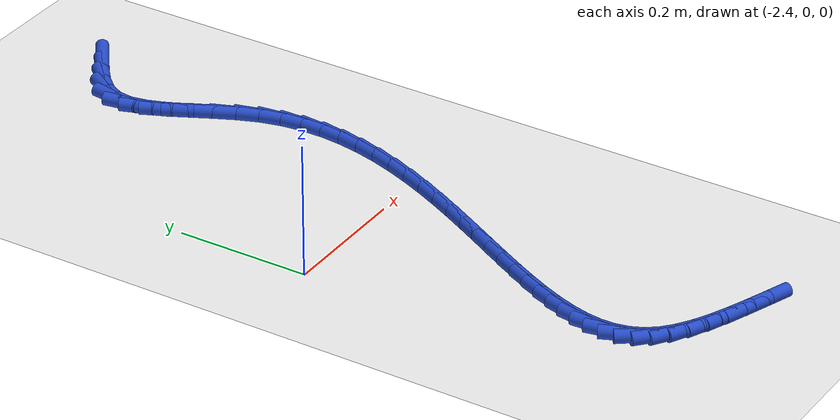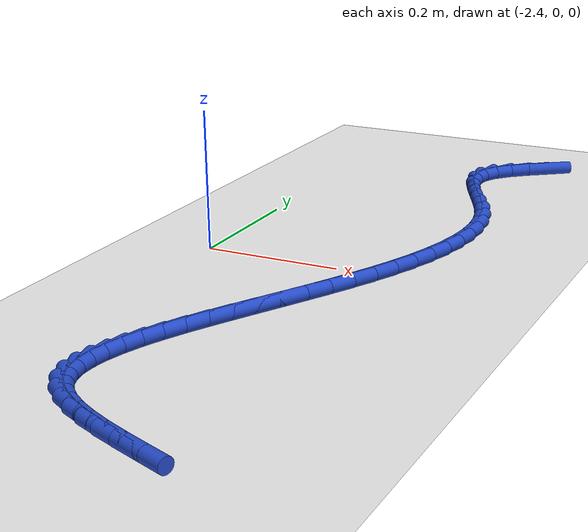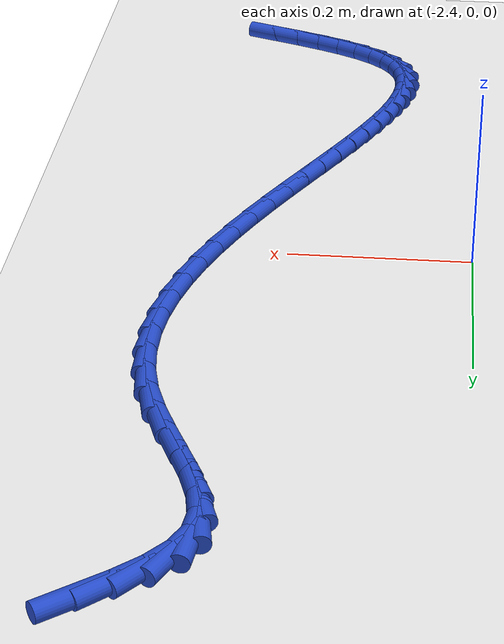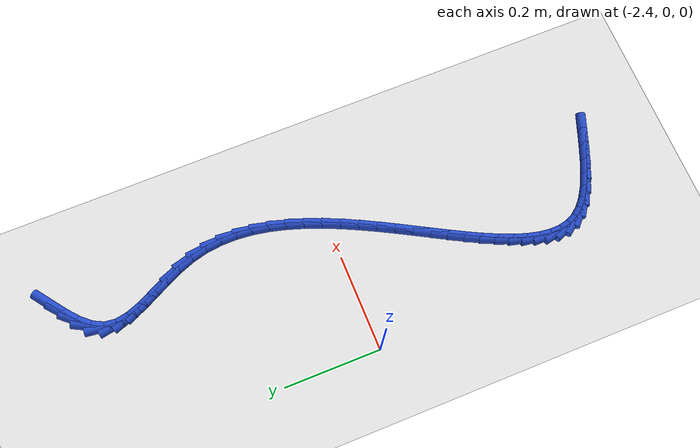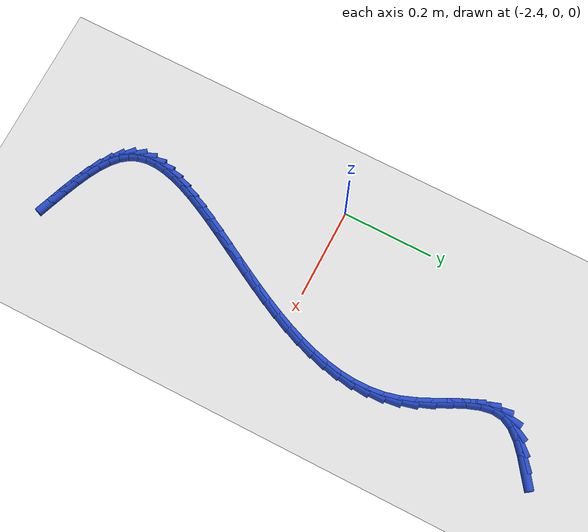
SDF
<sdf version="1.6">
 <world name="default">
  <model name="ground_plane">
   <static>1</static>
   <link name="link">
    <collision name="collision">
     <geometry><plane><normal>0 0 1</normal><size>100 100</size></plane></geometry>
     <surface><friction><ode><mu>100</mu><mu2>50</mu2></ode></friction></surface>
    </collision>
    <visual name="visual">
     <cast_shadows>0</cast_shadows>
     <geometry><plane><normal>0 0 1</normal><size>100 100</size></plane></geometry>
     <material>
      <script><uri>file://media/materials/scripts/gazebo.material</uri><name>Gazebo/WhiteGlow</name></script>
     </material>
    </visual>
   </link>
  </model>
  <model name="line">
   <link name="link_109">
    <pose>-2.0768717372128793 0.5652025458535648 0.01 0 1.57 0.6288564141586543</pose>
    <collision name="collision">
     <geometry><cylinder><radius>0.01</radius><length>0.08</length></cylinder></geometry>
    </collision>
    <visual name="visual">
     <material>
      <script><name>Gazebo/Blue</name><uri>file://media/materials/scripts/gazebo.material</uri></script>
     </material>
     <geometry><cylinder><radius>0.01</radius><length>0.08</length></cylinder></geometry>
    </visual>
   </link>
   <link name="link_110">
    <pose>-2.104337845397083 0.5452246693538564 0.01 0 1.57 0.7010850523284937</pose>
    <collision name="collision">
     <geometry><cylinder><radius>0.01</radius><length>0.08</length></cylinder></geometry>
    </collision>
    <visual name="visual">
     <material>
      <script><name>Gazebo/Blue</name><uri>file://media/materials/scripts/gazebo.material</uri></script>
     </material>
     <geometry><cylinder><radius>0.01</radius><length>0.08</length></cylinder></geometry>
    </visual>
   </link>
   <link name="link_111">
    <pose>-2.1286498554984687 0.5247018095238047 0.01 0 1.57 0.8453170291688488</pose>
    <collision name="collision">
     <geometry><cylinder><radius>0.01</radius><length>0.08</length></cylinder></geometry>
    </collision>
    <visual name="visual">
     <material>
      <script><name>Gazebo/Blue</name><uri>file://media/materials/scripts/gazebo.material</uri></script>
     </material>
     <geometry><cylinder><radius>0.01</radius><length>0.08</length></cylinder></geometry>
    </visual>
   </link>
   <link name="link_112">
    <pose>-2.147730063027277 0.5031862334443127 0.01 0 1.57 1.0970008732261427</pose>
    <collision name="collision">
     <geometry><cylinder><radius>0.01</radius><length>0.08</length></cylinder></geometry>
    </collision>
    <visual name="visual">
     <material>
      <script><name>Gazebo/Blue</name><uri>file://media/materials/scripts/gazebo.material</uri></script>
     </material>
     <geometry><cylinder><radius>0.01</radius><length>0.08</length></cylinder></geometry>
    </visual>
   </link>
   <link name="link_113">
    <pose>-2.159500763493746 0.48023020819628376 0.01 0 1.57 1.4522091517197169</pose>
    <collision name="collision">
     <geometry><cylinder><radius>0.01</radius><length>0.08</length></cylinder></geometry>
    </collision>
    <visual name="visual">
     <material>
      <script><name>Gazebo/Blue</name><uri>file://media/materials/scripts/gazebo.material</uri></script>
     </material>
     <geometry><cylinder><radius>0.01</radius><length>0.08</length></cylinder></geometry>
    </visual>
   </link>
   <link name="link_114">
    <pose>-2.162450237870991 0.45547512550309555 0.01 0 1.57 -1.3967242053440274</pose>
    <collision name="collision">
     <geometry><cylinder><radius>0.01</radius><length>0.08</length></cylinder></geometry>
    </collision>
    <visual name="visual">
     <material>
      <script><name>Gazebo/Blue</name><uri>file://media/materials/scripts/gazebo.material</uri></script>
     </material>
     <geometry><cylinder><radius>0.01</radius><length>0.08</length></cylinder></geometry>
    </visual>
   </link>
   <link name="link_115">
    <pose>-2.1577930745747396 0.4289916834785453 0.01 0 1.57 -1.2206644007151475</pose>
    <collision name="collision">
     <geometry><cylinder><radius>0.01</radius><length>0.08</length></cylinder></geometry>
    </collision>
    <visual name="visual">
     <material>
      <script><name>Gazebo/Blue</name><uri>file://media/materials/scripts/gazebo.material</uri></script>
     </material>
     <geometry><cylinder><radius>0.01</radius><length>0.08</length></cylinder></geometry>
    </visual>
   </link>
   <link name="link_116">
    <pose>-2.147563706843301 0.40097967962411835 0.01 0 1.57 -1.1320824989184435</pose>
    <collision name="collision">
     <geometry><cylinder><radius>0.01</radius><length>0.08</length></cylinder></geometry>
    </collision>
    <visual name="visual">
     <material>
      <script><name>Gazebo/Blue</name><uri>file://media/materials/scripts/gazebo.material</uri></script>
     </material>
     <geometry><cylinder><radius>0.01</radius><length>0.08</length></cylinder></geometry>
    </visual>
   </link>
   <link name="link_117">
    <pose>-2.1337967297673655 0.37163893692788197 0.01 0 1.57 -1.1062259422041585</pose>
    <collision name="collision">
     <geometry><cylinder><radius>0.01</radius><length>0.08</length></cylinder></geometry>
    </collision>
    <visual name="visual">
     <material>
      <script><name>Gazebo/Blue</name><uri>file://media/materials/scripts/gazebo.material</uri></script>
     </material>
     <geometry><cylinder><radius>0.01</radius><length>0.08</length></cylinder></geometry>
    </visual>
   </link>
   <link name="link_118">
    <pose>-2.1185267384376236 0.3411692783779035 0.01 0 1.57 -1.131931258743967</pose>
    <collision name="collision">
     <geometry><cylinder><radius>0.01</radius><length>0.08</length></cylinder></geometry>
    </collision>
    <visual name="visual">
     <material>
      <script><name>Gazebo/Blue</name><uri>file://media/materials/scripts/gazebo.material</uri></script>
     </material>
     <geometry><cylinder><radius>0.01</radius><length>0.08</length></cylinder></geometry>
    </visual>
   </link>
   <link name="link_119">
    <pose>-2.1037883279447653 0.30977052696225155 0.01 0 1.57 -1.2086382717523871</pose>
    <collision name="collision">
     <geometry><cylinder><radius>0.01</radius><length>0.08</length></cylinder></geometry>
    </collision>
    <visual name="visual">
     <material>
      <script><name>Gazebo/Blue</name><uri>file://media/materials/scripts/gazebo.material</uri></script>
     </material>
     <geometry><cylinder><radius>0.01</radius><length>0.08</length></cylinder></geometry>
    </visual>
   </link>
   <link name="link_120">
    <pose>-2.0916160262461463 0.27764250258447604 0.01 0 1.57 -1.329559805690106</pose>
    <collision name="collision">
     <geometry><cylinder><radius>0.01</radius><length>0.08</length></cylinder></geometry>
    </collision>
    <visual name="visual">
     <material>
      <script><name>Gazebo/Blue</name><uri>file://media/materials/scripts/gazebo.material</uri></script>
     </material>
     <geometry><cylinder><radius>0.01</radius><length>0.08</length></cylinder></geometry>
    </visual>
   </link>
   <link name="link_121">
    <pose>-2.0835760897534823 0.24496350987845775 0.01 0 1.57 -1.452726376679205</pose>
    <collision name="collision">
     <geometry><cylinder><radius>0.01</radius><length>0.08</length></cylinder></geometry>
    </collision>
    <visual name="visual">
     <material>
      <script><name>Gazebo/Blue</name><uri>file://media/materials/scripts/gazebo.material</uri></script>
     </material>
     <geometry><cylinder><radius>0.01</radius><length>0.08</length></cylinder></geometry>
    </visual>
   </link>
   <link name="link_122">
    <pose>-2.0796467919476345 0.2118388917931213 0.01 0 1.57 -1.565519292007792</pose>
    <collision name="collision">
     <geometry><cylinder><radius>0.01</radius><length>0.08</length></cylinder></geometry>
    </collision>
    <visual name="visual">
     <material>
      <script><name>Gazebo/Blue</name><uri>file://media/materials/scripts/gazebo.material</uri></script>
     </material>
     <geometry><cylinder><radius>0.01</radius><length>0.08</length></cylinder></geometry>
    </visual>
   </link>
   <link name="link_123">
    <pose>-2.0794701133260807 0.17835853991312814 0.01 0 1.57 1.4757272195439706</pose>
    <collision name="collision">
     <geometry><cylinder><radius>0.01</radius><length>0.08</length></cylinder></geometry>
    </collision>
    <visual name="visual">
     <material>
      <script><name>Gazebo/Blue</name><uri>file://media/materials/scripts/gazebo.material</uri></script>
     </material>
     <geometry><cylinder><radius>0.01</radius><length>0.08</length></cylinder></geometry>
    </visual>
   </link>
   <link name="link_124">
    <pose>-2.0826880343862983 0.14461234582314134 0.01 0 1.57 1.3884659287160903</pose>
    <collision name="collision">
     <geometry><cylinder><radius>0.01</radius><length>0.08</length></cylinder></geometry>
    </collision>
    <visual name="visual">
     <material>
      <script><name>Gazebo/Blue</name><uri>file://media/materials/scripts/gazebo.material</uri></script>
     </material>
     <geometry><cylinder><radius>0.01</radius><length>0.08</length></cylinder></geometry>
    </visual>
   </link>
   <link name="link_125">
    <pose>-2.0889425356257654 0.1106902011078224 0.01 0 1.57 1.3139254675837222</pose>
    <collision name="collision">
     <geometry><cylinder><radius>0.01</radius><length>0.08</length></cylinder></geometry>
    </collision>
    <visual name="visual">
     <material>
      <script><name>Gazebo/Blue</name><uri>file://media/materials/scripts/gazebo.material</uri></script>
     </material>
     <geometry><cylinder><radius>0.01</radius><length>0.08</length></cylinder></geometry>
    </visual>
   </link>
   <link name="link_126">
    <pose>-2.09787559754196 0.07668199735183309 0.01 0 1.57 1.2511961089881374</pose>
    <collision name="collision">
     <geometry><cylinder><radius>0.01</radius><length>0.08</length></cylinder></geometry>
    </collision>
    <visual name="visual">
     <material>
      <script><name>Gazebo/Blue</name><uri>file://media/materials/scripts/gazebo.material</uri></script>
     </material>
     <geometry><cylinder><radius>0.01</radius><length>0.08</length></cylinder></geometry>
    </visual>
   </link>
   <link name="link_127">
    <pose>-2.1091292006323594 0.04267762613983637 0.01 0 1.57 1.1991713451032548</pose>
    <collision name="collision">
     <geometry><cylinder><radius>0.01</radius><length>0.08</length></cylinder></geometry>
    </collision>
    <visual name="visual">
     <material>
      <script><name>Gazebo/Blue</name><uri>file://media/materials/scripts/gazebo.material</uri></script>
     </material>
     <geometry><cylinder><radius>0.01</radius><length>0.08</length></cylinder></geometry>
    </visual>
   </link>
   <link name="link_128">
    <pose>-2.1223453253944413 0.008766979056493835 0.01 0 1.57 1.156768154723805</pose>
    <collision name="collision">
     <geometry><cylinder><radius>0.01</radius><length>0.08</length></cylinder></geometry>
    </collision>
    <visual name="visual">
     <material>
      <script><name>Gazebo/Blue</name><uri>file://media/materials/scripts/gazebo.material</uri></script>
     </material>
     <geometry><cylinder><radius>0.01</radius><length>0.08</length></cylinder></geometry>
    </visual>
   </link>
   <link name="link_129">
    <pose>-2.1371659523256836 -0.024960052313532433 0.01 0 1.57 1.1230475680936398</pose>
    <collision name="collision">
     <geometry><cylinder><radius>0.01</radius><length>0.08</length></cylinder></geometry>
    </collision>
    <visual name="visual">
     <material>
      <script><name>Gazebo/Blue</name><uri>file://media/materials/scripts/gazebo.material</uri></script>
     </material>
     <geometry><cylinder><radius>0.01</radius><length>0.08</length></cylinder></geometry>
    </visual>
   </link>
   <link name="link_130">
    <pose>-2.1532330619235633 -0.05841357638558039 0.01 0 1.57 1.097273388313052</pose>
    <collision name="collision">
     <geometry><cylinder><radius>0.01</radius><length>0.08</length></cylinder></geometry>
    </collision>
    <visual name="visual">
     <material>
      <script><name>Gazebo/Blue</name><uri>file://media/materials/scripts/gazebo.material</uri></script>
     </material>
     <geometry><cylinder><radius>0.01</radius><length>0.08</length></cylinder></geometry>
    </visual>
   </link>
   <link name="link_131">
    <pose>-2.1701886346855592 -0.09150370157498788 0.01 0 1.57 1.0789395885235191</pose>
    <collision name="collision">
     <geometry><cylinder><radius>0.01</radius><length>0.08</length></cylinder></geometry>
    </collision>
    <visual name="visual">
     <material>
      <script><name>Gazebo/Blue</name><uri>file://media/materials/scripts/gazebo.material</uri></script>
     </material>
     <geometry><cylinder><radius>0.01</radius><length>0.08</length></cylinder></geometry>
    </visual>
   </link>
   <link name="link_132">
    <pose>-2.1876746511091487 -0.12414053629709296 0.01 0 1.57 1.0677873107670401</pose>
    <collision name="collision">
     <geometry><cylinder><radius>0.01</radius><length>0.08</length></cylinder></geometry>
    </collision>
    <visual name="visual">
     <material>
      <script><name>Gazebo/Blue</name><uri>file://media/materials/scripts/gazebo.material</uri></script>
     </material>
     <geometry><cylinder><radius>0.01</radius><length>0.08</length></cylinder></geometry>
    </visual>
   </link>
   <link name="link_133">
    <pose>-2.205333091691809 -0.15623418896723432 0.01 0 1.57 1.0638254521189596</pose>
    <collision name="collision">
     <geometry><cylinder><radius>0.01</radius><length>0.08</length></cylinder></geometry>
    </collision>
    <visual name="visual">
     <material>
      <script><name>Gazebo/Blue</name><uri>file://media/materials/scripts/gazebo.material</uri></script>
     </material>
     <geometry><cylinder><radius>0.01</radius><length>0.08</length></cylinder></geometry>
    </visual>
   </link>
   <link name="link_134">
    <pose>-2.222805936931018 -0.18769476800074814 0.01 0 1.57 1.067365261595423</pose>
    <collision name="collision">
     <geometry><cylinder><radius>0.01</radius><length>0.08</length></cylinder></geometry>
    </collision>
    <visual name="visual">
     <material>
      <script><name>Gazebo/Blue</name><uri>file://media/materials/scripts/gazebo.material</uri></script>
     </material>
     <geometry><cylinder><radius>0.01</radius><length>0.08</length></cylinder></geometry>
    </visual>
   </link>
   <link name="link_135">
    <pose>-2.239735167324253 -0.21843238181297314 0.01 0 1.57 1.0790786514906947</pose>
    <collision name="collision">
     <geometry><cylinder><radius>0.01</radius><length>0.08</length></cylinder></geometry>
    </collision>
    <visual name="visual">
     <material>
      <script><name>Gazebo/Blue</name><uri>file://media/materials/scripts/gazebo.material</uri></script>
     </material>
     <geometry><cylinder><radius>0.01</radius><length>0.08</length></cylinder></geometry>
    </visual>
   </link>
   <link name="link_136">
    <pose>-2.255762763368993 -0.24835713881924748 0.01 0 1.57 1.1000912612422413</pose>
    <collision name="collision">
     <geometry><cylinder><radius>0.01</radius><length>0.08</length></cylinder></geometry>
    </collision>
    <visual name="visual">
     <material>
      <script><name>Gazebo/Blue</name><uri>file://media/materials/scripts/gazebo.material</uri></script>
     </material>
     <geometry><cylinder><radius>0.01</radius><length>0.08</length></cylinder></geometry>
    </visual>
   </link>
   <link name="link_137">
    <pose>-2.2705307055627144 -0.2773791474349088 0.01 0 1.57 1.1321233793095071</pose>
    <collision name="collision">
     <geometry><cylinder><radius>0.01</radius><length>0.08</length></cylinder></geometry>
    </collision>
    <visual name="visual">
     <material>
      <script><name>Gazebo/Blue</name><uri>file://media/materials/scripts/gazebo.material</uri></script>
     </material>
     <geometry><cylinder><radius>0.01</radius><length>0.08</length></cylinder></geometry>
    </visual>
   </link>
   <link name="link_138">
    <pose>-2.2836809744028956 -0.30540851607529523 0.01 0 1.57 1.1776908983259862</pose>
    <collision name="collision">
     <geometry><cylinder><radius>0.01</radius><length>0.08</length></cylinder></geometry>
    </collision>
    <visual name="visual">
     <material>
      <script><name>Gazebo/Blue</name><uri>file://media/materials/scripts/gazebo.material</uri></script>
     </material>
     <geometry><cylinder><radius>0.01</radius><length>0.08</length></cylinder></geometry>
    </visual>
   </link>
   <link name="link_139">
    <pose>-2.2948555503870143 -0.3323553531557446 0.01 0 1.57 1.240362827982721</pose>
    <collision name="collision">
     <geometry><cylinder><radius>0.01</radius><length>0.08</length></cylinder></geometry>
    </collision>
    <visual name="visual">
     <material>
      <script><name>Gazebo/Blue</name><uri>file://media/materials/scripts/gazebo.material</uri></script>
     </material>
     <geometry><cylinder><radius>0.01</radius><length>0.08</length></cylinder></geometry>
    </visual>
   </link>
   <link name="link_140">
    <pose>-2.3036964140125478 -0.3581297670915956 0.01 0 1.57 1.3250073965361626</pose>
    <collision name="collision">
     <geometry><cylinder><radius>0.01</radius><length>0.08</length></cylinder></geometry>
    </collision>
    <visual name="visual">
     <material>
      <script><name>Gazebo/Blue</name><uri>file://media/materials/scripts/gazebo.material</uri></script>
     </material>
     <geometry><cylinder><radius>0.01</radius><length>0.08</length></cylinder></geometry>
    </visual>
   </link>
   <link name="link_141">
    <pose>-2.309845545776974 -0.38264186629818475 0.01 0 1.57 1.437761418964013</pose>
    <collision name="collision">
     <geometry><cylinder><radius>0.01</radius><length>0.08</length></cylinder></geometry>
    </collision>
    <visual name="visual">
     <material>
      <script><name>Gazebo/Blue</name><uri>file://media/materials/scripts/gazebo.material</uri></script>
     </material>
     <geometry><cylinder><radius>0.01</radius><length>0.08</length></cylinder></geometry>
    </visual>
   </link>
   <link name="link_142">
    <pose>-2.3129449261777704 -0.4058017591908505 0.01 0 1.57 -1.5565973834723952</pose>
    <collision name="collision">
     <geometry><cylinder><radius>0.01</radius><length>0.08</length></cylinder></geometry>
    </collision>
    <visual name="visual">
     <material>
      <script><name>Gazebo/Blue</name><uri>file://media/materials/scripts/gazebo.material</uri></script>
     </material>
     <geometry><cylinder><radius>0.01</radius><length>0.08</length></cylinder></geometry>
    </visual>
   </link>
   <link name="link_143">
    <pose>-2.312636535712415 -0.4275195541849308 0.01 0 1.57 -1.3716379782605055</pose>
    <collision name="collision">
     <geometry><cylinder><radius>0.01</radius><length>0.08</length></cylinder></geometry>
    </collision>
    <visual name="visual">
     <material>
      <script><name>Gazebo/Blue</name><uri>file://media/materials/scripts/gazebo.material</uri></script>
     </material>
     <geometry><cylinder><radius>0.01</radius><length>0.08</length></cylinder></geometry>
    </visual>
   </link>
   <link name="link_144">
    <pose>-2.308562354878386 -0.44770535969576397 0.01 0 1.57 -1.1549424729162479</pose>
    <collision name="collision">
     <geometry><cylinder><radius>0.01</radius><length>0.08</length></cylinder></geometry>
    </collision>
    <visual name="visual">
     <material>
      <script><name>Gazebo/Blue</name><uri>file://media/materials/scripts/gazebo.material</uri></script>
     </material>
     <geometry><cylinder><radius>0.01</radius><length>0.08</length></cylinder></geometry>
    </visual>
   </link>
   <link name="link_145">
    <pose>-2.3003643641731593 -0.4662692841386874 0.01 0 1.57 -0.9268897687697901</pose>
    <collision name="collision">
     <geometry><cylinder><radius>0.01</radius><length>0.08</length></cylinder></geometry>
    </collision>
    <visual name="visual">
     <material>
      <script><name>Gazebo/Blue</name><uri>file://media/materials/scripts/gazebo.material</uri></script>
     </material>
     <geometry><cylinder><radius>0.01</radius><length>0.08</length></cylinder></geometry>
    </visual>
   </link>
   <link name="link_146">
    <pose>-2.2877073940528376 -0.4831309971147586 0.01 0 1.57 -0.7317230712441787</pose>
    <collision name="collision">
     <geometry><cylinder><radius>0.01</radius><length>0.08</length></cylinder></geometry>
    </collision>
    <visual name="visual">
     <material>
      <script><name>Gazebo/Blue</name><uri>file://media/materials/scripts/gazebo.material</uri></script>
     </material>
     <geometry><cylinder><radius>0.01</radius><length>0.08</length></cylinder></geometry>
    </visual>
   </link>
   <link name="link_147">
    <pose>-2.2707062522030728 -0.49839845372401886 0.01 0 1.57 -0.5904634914090827</pose>
    <collision name="collision">
     <geometry><cylinder><radius>0.01</radius><length>0.08</length></cylinder></geometry>
    </collision>
    <visual name="visual">
     <material>
      <script><name>Gazebo/Blue</name><uri>file://media/materials/scripts/gazebo.material</uri></script>
     </material>
     <geometry><cylinder><radius>0.01</radius><length>0.08</length></cylinder></geometry>
    </visual>
   </link>
   <link name="link_148">
    <pose>-2.2498873582865224 -0.5123518412626953 0.01 0 1.57 -0.49238222830542083</pose>
    <collision name="collision">
     <geometry><cylinder><radius>0.01</radius><length>0.08</length></cylinder></geometry>
    </collision>
    <visual name="visual">
     <material>
      <script><name>Gazebo/Blue</name><uri>file://media/materials/scripts/gazebo.material</uri></script>
     </material>
     <geometry><cylinder><radius>0.01</radius><length>0.08</length></cylinder></geometry>
    </visual>
   </link>
   <link name="link_149">
    <pose>-2.2257922897665035 -0.5252776895569761 0.01 0 1.57 -0.4263042225383171</pose>
    <collision name="collision">
     <geometry><cylinder><radius>0.01</radius><length>0.08</length></cylinder></geometry>
    </collision>
    <visual name="visual">
     <material>
      <script><name>Gazebo/Blue</name><uri>file://media/materials/scripts/gazebo.material</uri></script>
     </material>
     <geometry><cylinder><radius>0.01</radius><length>0.08</length></cylinder></geometry>
    </visual>
   </link>
   <link name="link_150">
    <pose>-2.1989626241063305 -0.5374625284330473 0.01 0 1.57 -0.38410374448669893</pose>
    <collision name="collision">
     <geometry><cylinder><radius>0.01</radius><length>0.08</length></cylinder></geometry>
    </collision>
    <visual name="visual">
     <material>
      <script><name>Gazebo/Blue</name><uri>file://media/materials/scripts/gazebo.material</uri></script>
     </material>
     <geometry><cylinder><radius>0.01</radius><length>0.08</length></cylinder></geometry>
    </visual>
   </link>
   <link name="link_151">
    <pose>-2.169939938769318 -0.5491928877170965 0.01 0 1.57 -0.36047337167497284</pose>
    <collision name="collision">
     <geometry><cylinder><radius>0.01</radius><length>0.08</length></cylinder></geometry>
    </collision>
    <visual name="visual">
     <material>
      <script><name>Gazebo/Blue</name><uri>file://media/materials/scripts/gazebo.material</uri></script>
     </material>
     <geometry><cylinder><radius>0.01</radius><length>0.08</length></cylinder></geometry>
    </visual>
   </link>
   <link name="link_152">
    <pose>-2.1392658112187823 -0.5607552972353119 0.01 0 1.57 -0.35218949267784466</pose>
    <collision name="collision">
     <geometry><cylinder><radius>0.01</radius><length>0.08</length></cylinder></geometry>
    </collision>
    <visual name="visual">
     <material>
      <script><name>Gazebo/Blue</name><uri>file://media/materials/scripts/gazebo.material</uri></script>
     </material>
     <geometry><cylinder><radius>0.01</radius><length>0.08</length></cylinder></geometry>
    </visual>
   </link>
  </model>
 </world>
</sdf>
